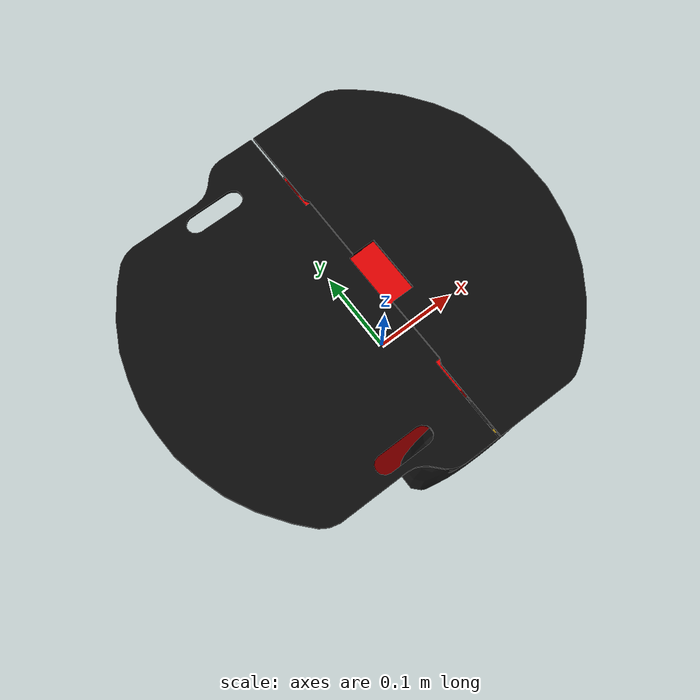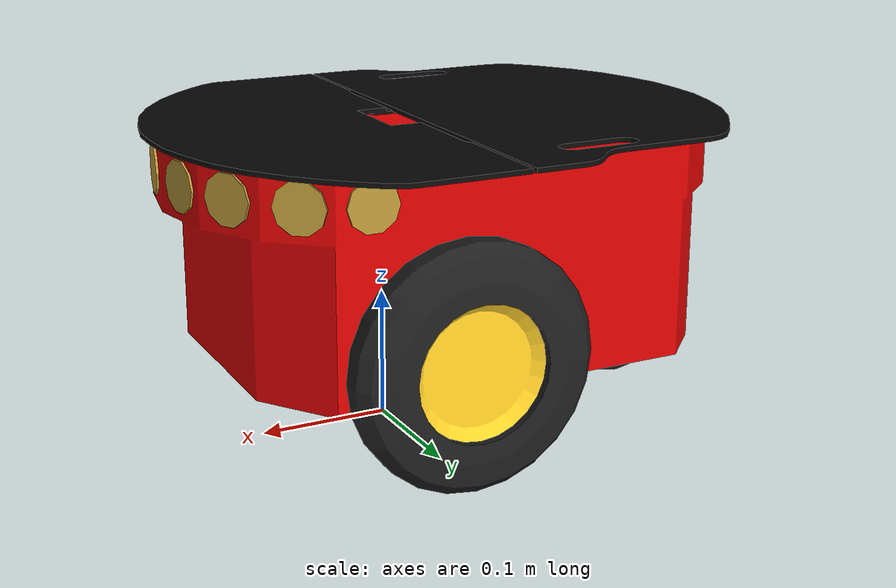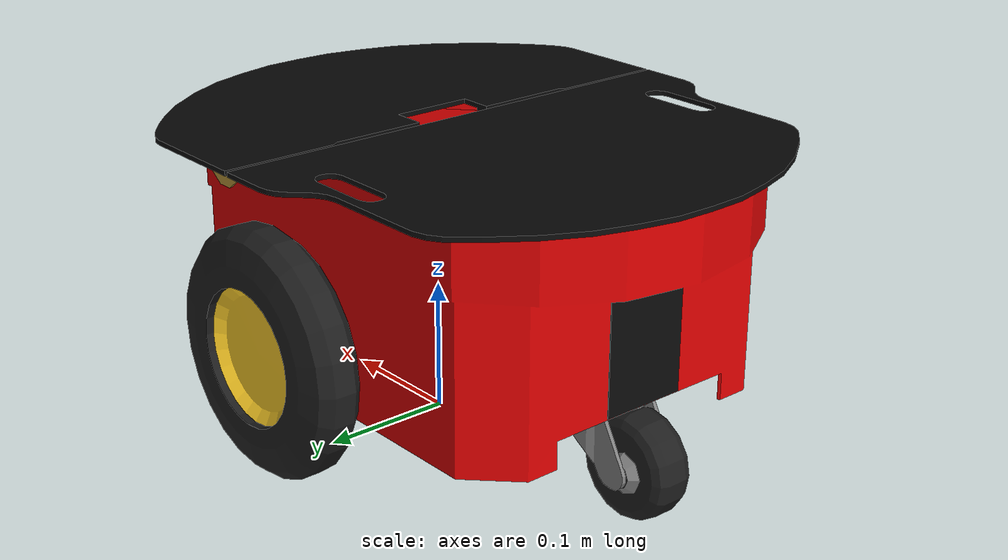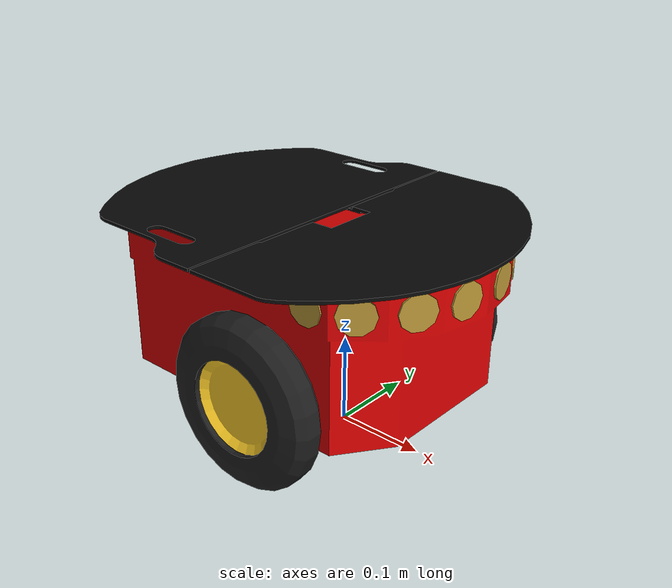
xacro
<?xml version="1.0"?>
<robot xmlns:xacro="http://www.ros.org/wiki/xacro" name="pioneer3dx" >

  <!-- Import Rviz colors -->
  <xacro:include filename="$(find gazebo_plugins)/test/multi_robot_scenario/xacro/materials.xacro" />

  <!-- Import robot -->
  <xacro:include filename="$(find gazebo_plugins)/test/multi_robot_scenario/xacro/p3dx/pioneer3dx_body.xacro"/>
  <xacro:pioneer3dx_body name="chassis" parent="base_link" meshes="package://gazebo_plugins/test/multi_robot_scenario/meshes/p3dx"/>

  <!-- Laser  -->

</robot>

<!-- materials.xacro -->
<robot>

  <material name="black">
    <color rgba="0.0 0.0 0.0 1.0"/>
  </material>

  <material name="blue">
    <color rgba="0.0 0.0 0.8 1.0"/>
  </material>

  <material name="green">
    <color rgba="0.0 0.8 0.0 1.0"/>
  </material>

  <material name="grey">
    <color rgba="0.2 0.2 0.2 1.0"/>
  </material>

  <material name="orange">
    <color rgba="${255/255} ${108/255} ${10/255} 1.0"/>
  </material>

  <material name="brown">
    <color rgba="${222/255} ${207/255} ${195/255} 1.0"/>
  </material>

  <material name="red">
    <color rgba="0.8 0.0 0.0 1.0"/>
  </material>

  <material name="white">
    <color rgba="1.0 1.0 1.0 1.0"/>
  </material>

</robot>

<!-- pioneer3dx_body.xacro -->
<robot xmlns:xacro="http://www.ros.org/wiki/xacro">

  <xacro:include filename="inertia_tensors.xacro"/>
  <xacro:include filename="pioneer3dx_chassis.xacro"/>
  <xacro:include filename="battery_block.xacro"/>
  <xacro:include filename="pioneer3dx_wheel.xacro"/>
  <xacro:include filename="pioneer3dx_swivel.xacro"/>
  <xacro:include filename="pioneer3dx_sonar.xacro"/>
  <xacro:include filename="pioneer3dx_plugins.xacro"/>

  <xacro:macro name="pioneer3dx_body" params="name parent meshes">

    <!-- base_link -->
    <link name="${parent}"/>

    <!-- Chassis -->
    <xacro:pioneer_chassis name="${name}" parent="base_link" xyz="0 0 0" rpy="0 0 0"  meshes="${meshes}"/>

    <!-- Front Sonar -->
    <xacro:pioneer_sonar name="sonar" parent="${name}" xyz="0.109 0 0.209" rpy="0 0 0"  meshes="${meshes}"/>

    <!-- Akku0 -->
    <xacro:battery_block name="battery0" parent="${name}" x="-0.14" y="0.00"  z="0.13" mass="2.5" />

    <!-- Wheels -->
    <xacro:pioneer_wheel side="right" parent="${name}"  xyz="0  0.15 0.09" rpy="0 0 0" radius="0.09" meshes="${meshes}"/>
    <xacro:pioneer_wheel side="left"  parent="${name}"  xyz="0 -0.15 0.09" rpy="0 0 0" radius="0.09" meshes="${meshes}"/>
    <xacro:pioneer_swivel parent="${name}"  xyz="-0.185 0 0.055" rpy="0 0 0" meshes="${meshes}"/>

    <!-- Motor plugin -->
    <xacro:pioneer3dx_diff_drive />

    <!-- Joints plugin -->
    <xacro:pioneer3dx_joints_state_publisher />

  </xacro:macro>
</robot>

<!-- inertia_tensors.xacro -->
<!-- Thanks to Martin Guenther
  see https://github.com/uos/uos_tools/blob/fuerte/uos_common_urdf/common.xacro and
  see http://answers.gazebosim.org/question/4372/the-inertia-matrix-explained/ -->
<robot xmlns:xacro="http://ros.org/wiki/xacro">
  <xacro:property name="M_PI" value="3.1415926535897931" />

  <!-- see https://secure.wikimedia.org/wikipedia/en/wiki/List_of_moment_of_inertia_tensors -->

  <!-- #################### versions without origin #################### -->
  <xacro:macro name="sphere_inertial" params="radius mass">
    <inertial>
      <mass value="${mass}" />
      <origin xyz="0 0 0" />
      <inertia ixx="${0.4 * mass * radius * radius}" ixy="0.0" ixz="0.0"
        iyy="${0.4 * mass * radius * radius}" iyz="0.0"
        izz="${0.4 * mass * radius * radius}" />
    </inertial>
  </xacro:macro>

  <xacro:macro name="cylinder_inertial" params="radius length mass">
    <inertial>
      <mass value="${mass}" />
      <origin xyz="0 0 0" />
      <inertia ixx="${0.0833333 * mass * (3 * radius * radius + length * length)}" ixy="0.0" ixz="0.0"
        iyy="${0.0833333 * mass * (3 * radius * radius + length * length)}" iyz="0.0"
        izz="${0.5 * mass * radius * radius}" />
    </inertial>
  </xacro:macro>

  <xacro:macro name="box_inertial" params="x y z mass">
    <inertial>
      <mass value="${mass}" />
      <origin xyz="0 0 0" />
      <inertia ixx="${0.0833333 * mass * (y*y + z*z)}" ixy="0.0" ixz="0.0"
        iyy="${0.0833333 * mass * (x*x + z*z)}" iyz="0.0"
        izz="${0.0833333 * mass * (x*x + y*y)}" />
    </inertial>
  </xacro:macro>

  <!-- #################### versions with origin #################### -->
  <xacro:macro name="sphere_inertial_with_origin" params="radius mass *origin">
    <inertial>
      <mass value="${mass}" />
      <xacro:insert_block name="origin" />
      <inertia ixx="${0.4 * mass * radius * radius}" ixy="0.0" ixz="0.0"
        iyy="${0.4 * mass * radius * radius}" iyz="0.0"
        izz="${0.4 * mass * radius * radius}" />
    </inertial>
  </xacro:macro>

  <xacro:macro name="cylinder_inertial_with_origin" params="radius length mass *origin">
    <inertial>
      <mass value="${mass}" />
      <xacro:insert_block name="origin" />
      <inertia ixx="${0.0833333 * mass * (3 * radius * radius + length * length)}" ixy="0.0" ixz="0.0"
        iyy="${0.0833333 * mass * (3 * radius * radius + length * length)}" iyz="0.0"
        izz="${0.5 * mass * radius * radius}" />
    </inertial>
  </xacro:macro>

  <xacro:macro name="box_inertial_with_origin" params="x y z mass *origin">
    <inertial>
      <mass value="${mass}" />
      <xacro:insert_block name="origin" />
      <inertia ixx="${0.0833333 * mass * (y*y + z*z)}" ixy="0.0" ixz="0.0"
        iyy="${0.0833333 * mass * (x*x + z*z)}" iyz="0.0"
        izz="${0.0833333 * mass * (x*x + y*y)}" />
    </inertial>
  </xacro:macro>

</robot>

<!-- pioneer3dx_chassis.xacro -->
<robot xmlns:xacro="http://ros.org/wiki/xacro">
  <xacro:property name="M_PI" value="3.1415926535897931" />

  <xacro:macro name="pioneer_chassis" params="name parent xyz rpy meshes">

  <!-- Chassis -->
  <joint name="${parent}_${name}_joint" type="fixed">
    <origin xyz="${xyz}" rpy="${rpy}"/>
    <parent link="${parent}"/>
    <child link="${name}"/>
  </joint>
  <link name="${name}">
    <visual name="chassis_visual">
      <origin xyz="-0.045 0 0.148" rpy="0 0 0"/>
      <geometry name="pioneer_geom">
        <mesh filename="${meshes}/chassis.stl"/>
      </geometry>
      <material name="ChassisRed">
        <color rgba="0.851 0.0 0.0 1.0"/>
      </material>
    </visual>
    <collision>
      <origin xyz="-0.045 0 0.148" rpy="0 0 0"/>
      <geometry>
        <mesh filename="${meshes}/chassis.stl"/>
      </geometry>
    </collision>
    <xacro:box_inertial x="0.36" y="0.26"  z="0.18" mass="9.0" />
  </link>
  <gazebo reference="${name}">
    <material value="Gazebo/Red"/>
  </gazebo>

  <!-- Top -->
  <joint name="${name}_top_joint" type="fixed">
    <origin xyz="-0.045 0 0.234" rpy="0 0 0"/>
    <parent link="${name}"/>
    <child link="top"/>
  </joint>
  <link name="top">
    <visual>
      <origin xyz="0 0 0" rpy="0 0 0"/>
      <geometry name="top_geom">
        <mesh filename="${meshes}/top.stl"/>
      </geometry>
      <material name="TopBlack">
        <color rgba="0.038 0.038 0.038 1.0"/>
      </material>
    </visual>
    <collision>
    <origin xyz="0.0 0 0.0" rpy="0 0 0"/>
      <geometry>
        <mesh filename="${meshes}/top.stl"/>
      </geometry>
    </collision>
    <xacro:box_inertial x="0.445" y="0.38"  z="0.01" mass="1.0" />
  </link>
  <gazebo reference="top">
    <material value="Gazebo/Black"/>
  </gazebo>

  </xacro:macro>

</robot>

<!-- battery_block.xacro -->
<robot xmlns:xacro="http://ros.org/wiki/xacro">
  <xacro:property name="M_PI" value="3.1415926535897931" />

  <xacro:macro name="battery_block" params="name parent x y z mass">

  <joint name="${parent}_${name}_joint" type="fixed">
    <origin xyz="${x} ${y} ${z}" rpy="0 0 0"/>
    <parent link="${parent}"/>
    <child link="${name}"/>
  </joint>
  <link name="${name}">
    <visual name="${name}_visual">
      <origin xyz="0 0 0" rpy="0 0 0"/>
      <geometry name="${name}_geometry">
        <box size="0.151 0.065 0.094"/>
      </geometry>
      <material name="${name}_material">
        <color rgba="0.038 0.038 0.038 1.0"/>
      </material>
    </visual>
    <inertial>
      <mass value="${mass}" />
      <origin xyz="0 0 0" />
      <inertia ixx="${0.0833333 * mass * (y*y + z*z)}" ixy="0.0" ixz="0.0"
        iyy="${0.0833333 * mass * (x*x + z*z)}" iyz="0.0"
        izz="${0.0833333 * mass * (x*x + y*y)}" />
    </inertial>
  </link>
  <gazebo reference="${name}">
    <material value="Gazebo/Black"/>
  </gazebo>

  </xacro:macro>

</robot>

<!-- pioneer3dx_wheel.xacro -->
<robot
  xmlns:xacro="http://ros.org/wiki/xacro">
  <xacro:property name="M_PI" value="3.1415926535897931" />

  <xacro:macro name="pioneer_wheel" params="side parent xyz rpy radius meshes">

  <!-- Hubcap -->
  <joint name="${side}_hub_joint" type="continuous">
    <origin xyz="${xyz}" rpy="${rpy}"/>
    <parent link="${parent}"/>
    <child link="${side}_hub"/>
    <axis xyz="0 1 0"/>
  </joint>
  <link name="${side}_hub">
    <inertial>
      <mass value="0.01"/>
      <origin xyz="0 0 0"/>
      <inertia ixx="0.012411765597" ixy="0" ixz="0" iyy="0.015218160428" iyz="0" izz="0.011763977943"/>
    </inertial>
    <visual name="base_visual">
      <origin xyz="0 0 0" rpy="0 0 0"/>
      <geometry name="pioneer_geom">
        <mesh filename="${meshes}/${side}_hubcap.stl"/>
      </geometry>
      <material name="HubcapYellow">
        <color rgba="1.0 0.811 0.151 1.0"/>
      </material>
    </visual>
    <collision>
      <origin xyz="0 0 0" rpy="0 0 0"/>
      <geometry>
        <box size="0 0 0"/>
      </geometry>
    </collision>
  </link>
  <gazebo reference="${side}_hub">
    <material value="Gazebo/Yellow"/>
  </gazebo>

  <!-- Wheel -->
  <joint name="${side}_wheel_joint" type="fixed">
    <axis xyz="0 1 0"/>
    <origin xyz="0 0 0" rpy="0 0 0"/>
    <parent link="${side}_hub"/>
    <child link="${side}_wheel"/>
  </joint>
  <link name="${side}_wheel">
    <inertial>
      <mass value="0.5"/>
      <origin xyz="0 0 0"/>
      <inertia ixx="0.012411765597" ixy="0" ixz="0" iyy="0.015218160428" iyz="0" izz="0.011763977943"/>
    </inertial>
    <visual name="base_visual">
      <origin xyz="0 0 0" rpy="0 0 0"/>
      <geometry name="pioneer_geom">
        <mesh filename="${meshes}/${side}_wheel.stl"/>
      </geometry>
      <material name="WheelBlack">
        <color rgba="0.117 0.117 0.117 1"/>
      </material>
    </visual>
    <collision>
      <origin xyz="0 0 0" rpy="${-3.1415927/2} 0 0"/>
      <geometry>
        <cylinder radius="${radius}" length="0.01"/>
      </geometry>
    </collision>
  </link>
  <gazebo reference="${side}_wheel">
    <material value="Gazebo/Black"/>
  </gazebo>

  </xacro:macro>

</robot>

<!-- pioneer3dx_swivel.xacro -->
<robot xmlns:xacro="http://ros.org/wiki/xacro">
  <xacro:property name="M_PI" value="3.1415926535897931" />

  <xacro:macro name="pioneer_swivel" params="parent xyz rpy meshes">

  <!-- Swivel -->
  <joint name="chassis_swivel_joint" type="continuous">
    <origin xyz="${xyz}" rpy="${rpy}"/>
    <axis xyz="0 0 1"/>
    <anchor xyz="0 0 0"/>
    <limit effort="100" velocity="100" k_velocity="0"/>
    <joint_properties damping="0.0" friction="0.0"/>
    <parent link="${parent}"/>
    <child link="swivel"/>
  </joint>
  <link name="swivel">
    <inertial>
      <mass value="0.1"/>
      <origin xyz="0 0 0"/>
      <inertia ixx="0.01" ixy="0" ixz="0" iyy="0.01" iyz="0" izz="0.01"/>
    </inertial>
    <visual name="base_visual">
      <origin xyz="0 0 0" rpy="0 0 0"/>
      <geometry name="pioneer_geom">
        <mesh filename="${meshes}/swivel.stl"/>
      </geometry>
      <material name="swivel">
        <color rgba="0.5 0.5 0.5 1"/>
      </material>
    </visual>
    <collision>
      <origin xyz="0 0 0" rpy="0 0 0"/>
      <geometry>
        <box size="0 0 0"/>
      </geometry>
    </collision>
  </link>
  <gazebo reference="swivel">
    <material value="Gazebo/Grey"/>
  </gazebo>

  <!-- Center Wheel -->
  <joint name="swivel_wheel_joint" type="continuous">
    <origin xyz="-0.026 0 -0.016" rpy="0 0 0"/>
    <axis xyz="0 1 0"/>
    <anchor xyz="0 0 0"/>
    <limit effort="100" velocity="100" k_velocity="0"/>
    <joint_properties damping="0.0" friction="0.0"/>
    <parent link="swivel"/>
    <child link="center_wheel"/>
  </joint>
  <link name="center_wheel">
    <inertial>
      <mass value="0.1"/>
      <origin xyz="0 0 0"/>
      <inertia ixx="0.012411765597" ixy="-0.000711733678" ixz="0.00050272983" iyy="0.015218160428" iyz="-0.000004273467" izz="0.011763977943"/>
    </inertial>
    <visual name="base_visual">
      <origin xyz="0 0 0" rpy="0 0 0"/>
      <geometry name="pioneer_geom">
        <mesh filename="${meshes}/center_wheel.stl"/>
      </geometry>
      <material name="WheelBlack">
        <color rgba="0.117 0.117 0.117 1"/>
      </material>
    </visual>
    <collision>
      <origin xyz="0 0 0" rpy="${-3.1415927/2.0} 0 0"/>
      <geometry>
        <cylinder radius="0.0375" length="0.01"/>
      </geometry>
    </collision>
  </link>
  <gazebo reference="center_wheel">
    <material value="Gazebo/Black"/>
  </gazebo>

  <!-- Center Hubcap -->
  <joint name="wheel_hubcap_joint" type="fixed">
    <origin xyz="-0.0035 0 -0.001" rpy="0 0 0"/>
    <parent link="center_wheel"/>
    <child link="center_hubcap"/>
  </joint>
  <link name="center_hubcap">
    <inertial>
      <mass value="0.01"/>
      <origin xyz="0 0 0"/>
      <inertia ixx="0.012411765597" ixy="-0.000711733678" ixz="0.00050272983" iyy="0.015218160428" iyz="-0.000004273467" izz="0.011763977943"/>
    </inertial>
    <visual name="base_visual">
      <origin xyz="0 0 0" rpy="0 0 0"/>
      <geometry name="pioneer_geom">
        <mesh filename="${meshes}/center_hubcap.stl"/>
      </geometry>
      <material name="swivel">
        <color rgba="0.5 0.5 0.5 1"/>
      </material>
    </visual>
    <collision>
      <origin xyz="0 0 0" rpy="0 0 0"/>
      <geometry>
        <box size="0 0 0"/>
      </geometry>
    </collision>
  </link>
  <gazebo reference="center_hubcap">
    <material value="Gazebo/Grey"/>
  </gazebo>

  </xacro:macro>

</robot>

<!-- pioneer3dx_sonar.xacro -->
<robot xmlns:xacro="http://ros.org/wiki/xacro">
  <xacro:property name="M_PI" value="3.1415926535897931" />

  <xacro:macro name="pioneer_sonar" params="name parent xyz rpy meshes">

  <!-- Front Sonar -->
  <joint name="${parent}_${name}_joint" type="fixed">
    <origin xyz="${xyz}" rpy="${rpy}"/>
    <parent link="${parent}"/>
    <child link="${name}"/>
  </joint>
  <link name="${name}">
    <inertial>
      <mass value="0.0001"/>
      <origin xyz="0 0 0"/>
      <inertia ixx="1" ixy="0" ixz="0" iyy="1" iyz="0" izz="1"/>
    </inertial>
    <visual name="front_sonar_vis">
      <origin xyz="0 0 0" rpy="0 0 0"/>
      <geometry name="pioneer_geom">
        <mesh filename="${meshes}/back_sonar.stl"/>
      </geometry>
      <material name="SonarYellow">
        <color rgba="0.715 0.583 0.210 1.0"/>
      </material>
    </visual>
    <collision>
      <origin xyz="0 0 0" rpy="0 0 0"/>
      <geometry>
        <box size="0 0 0"/>
      </geometry>
    </collision>
  </link>
  <gazebo reference="${name}">
    <material value="Gazebo/Yellow"/>
  </gazebo>

  </xacro:macro>

</robot>
